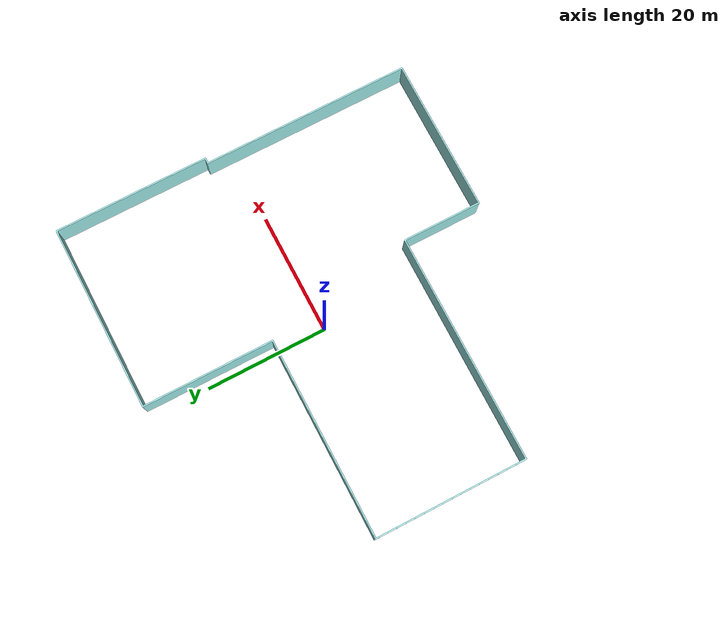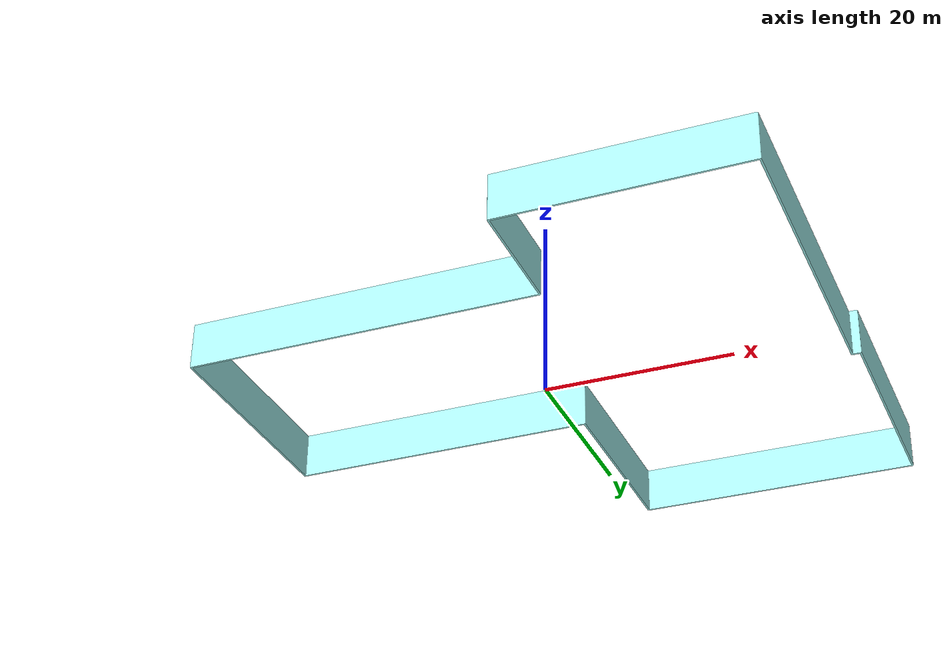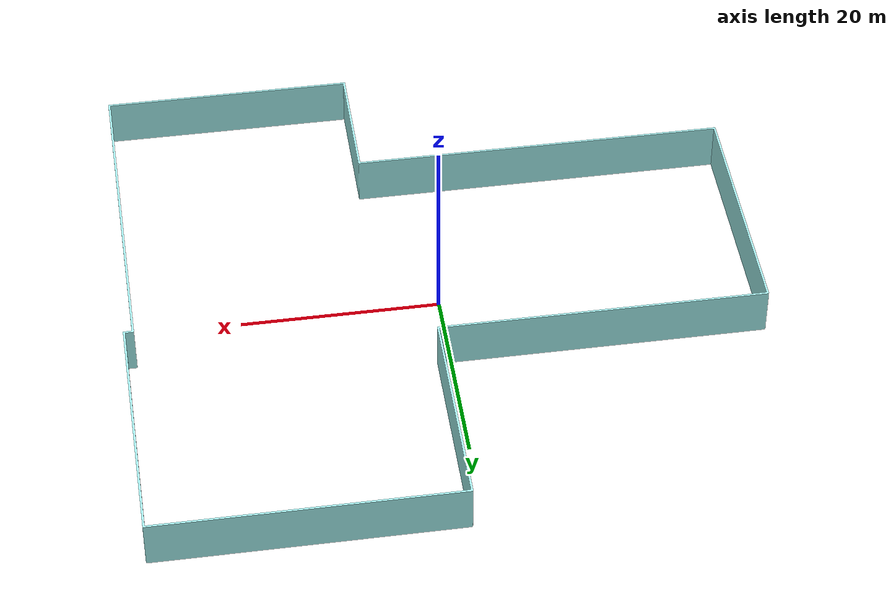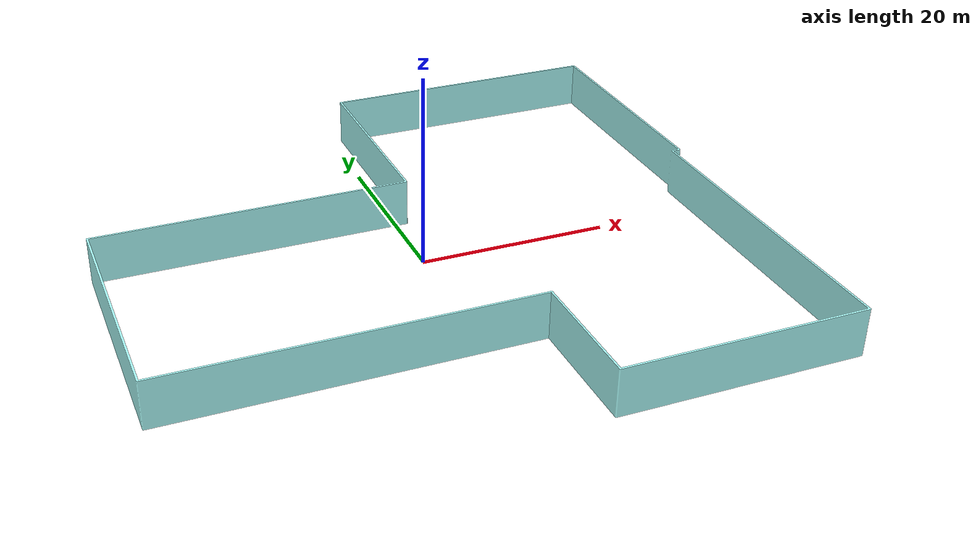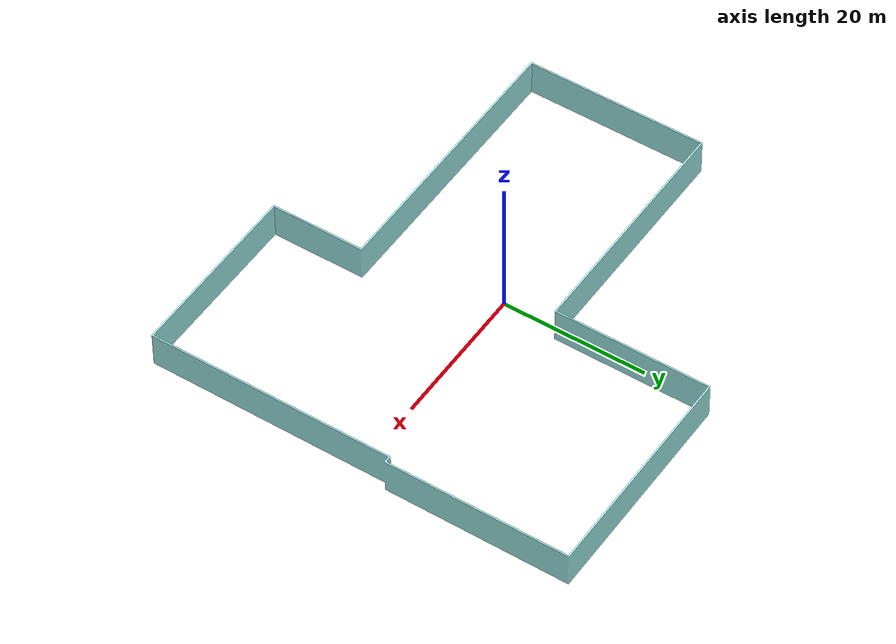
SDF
<?xml version="1.0" ?>
<sdf version="1.6">
  <model name="test_0_walls">
    <pose frame="">0 0 2.5 0 -0 0</pose>
    <static>1</static>
    <self_collide>0</self_collide>
    <allow_auto_disable>0</allow_auto_disable>
    <link name="mesh">
      <kinematic>0</kinematic>
      <gravity>1</gravity>
      <self_collide>0</self_collide>
      <collision name="collision">
        <geometry>
          <mesh>
            <uri>file:///home/agusmazzeo/Documents/UTN/Proyecto/Frontier-Exploration-with-a-prior/Notebooks/files/models/test_0_walls/meshes/cRJADqRszz.stl</uri>
            <scale>1 1 1</scale>
          </mesh>
        </geometry>
        <pose frame="">-0.707058 3.6214 -2.5 0 -0 0</pose>
        <max_contacts>20</max_contacts>
      </collision>
      <visual name="visual">
        <geometry>
          <mesh>
            <uri>file:///home/agusmazzeo/Documents/UTN/Proyecto/Frontier-Exploration-with-a-prior/Notebooks/files/models/test_0_walls/meshes/SCRXsAFWDL.stl</uri>
            <scale>1 1 1</scale>
          </mesh>
        </geometry>
        <material>
          <ambient>0.67451 1 0.988235 1</ambient>
          <diffuse>0.6745098039215687 1.0 0.9882352941176471 1</diffuse>
        </material>
        <pose frame="">-0.707058 3.6214 -2.5 0 -0 0</pose>
        <cast_shadows>1</cast_shadows>
        <transparency>0.0</transparency>
      </visual>
      <pose frame="">0 0 0 0 -0 0</pose>
    </link>
  </model>
</sdf>
